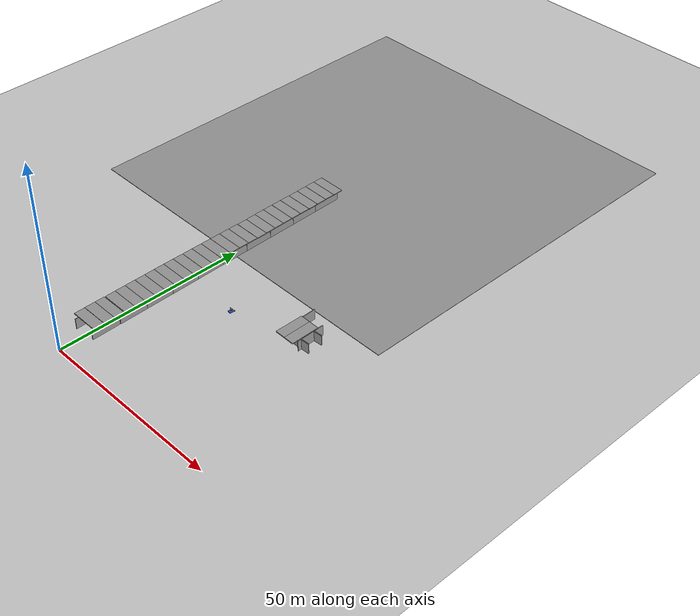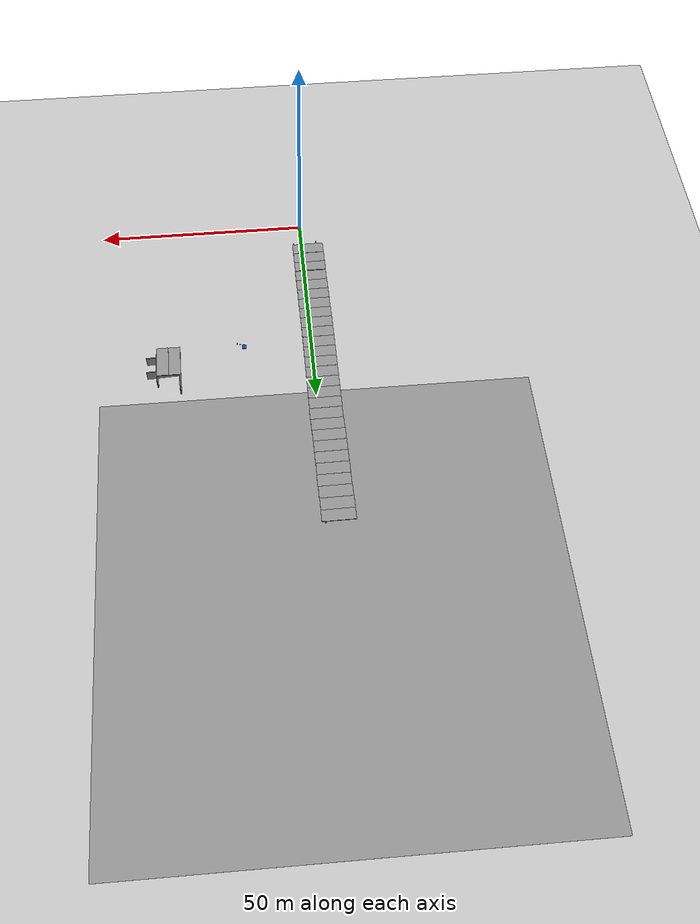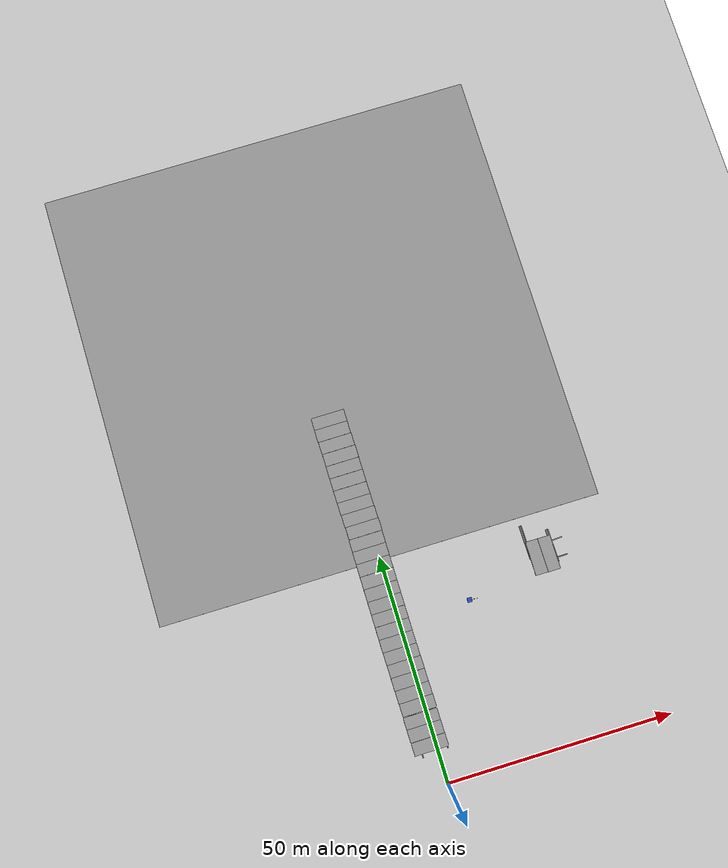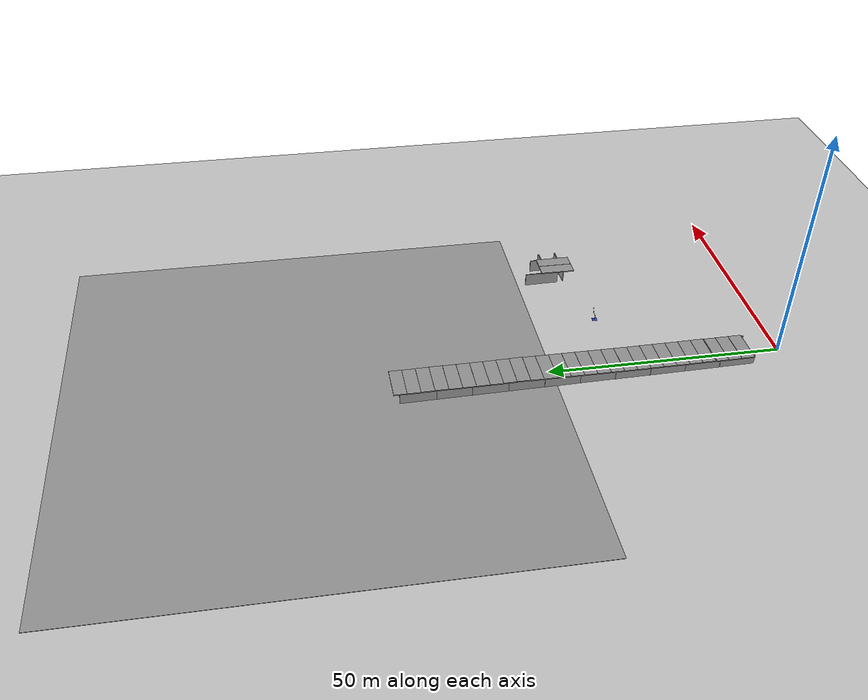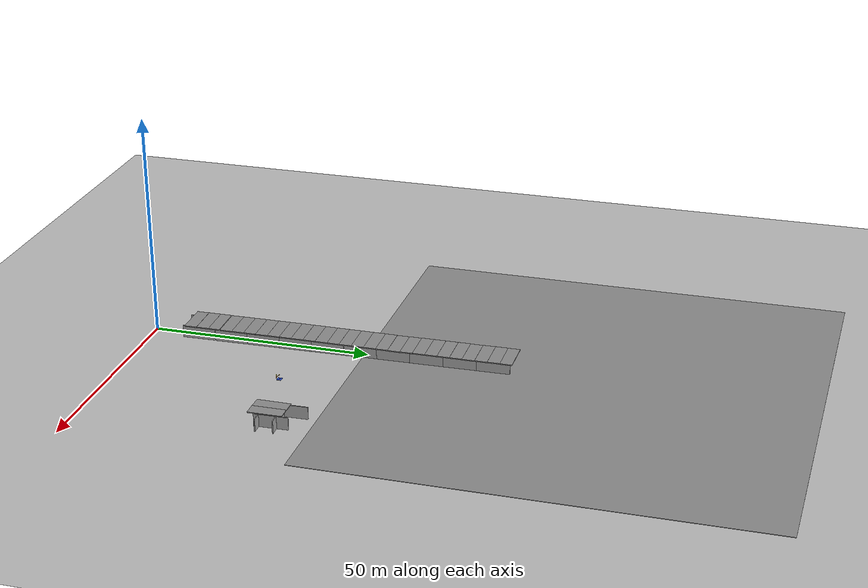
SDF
<sdf version="1.7">
 <world name="default">
  <model name="ground_plane">
   <static>1</static>
   <link name="link">
    <collision name="collision">
     <geometry><plane><normal>0 0 1</normal><size>100 100</size></plane></geometry>
     <surface><friction><ode><mu>100</mu><mu2>50</mu2></ode></friction></surface>
    </collision>
    <visual name="visual">
     <cast_shadows>0</cast_shadows>
     <geometry><plane><normal>0 0 1</normal><size>100 100</size></plane></geometry>
     <material>
      <script><uri>file://media/materials/scripts/gazebo.material</uri><name>Gazebo/Grey</name></script>
     </material>
    </visual>
   </link>
  </model>
  <model name="ground_plane_1">
   <static>1</static>
   <link name="link">
    <collision name="collision">
     <geometry><plane><normal>0 0 1</normal><size>100 100</size></plane></geometry>
     <surface><friction><ode><mu>100</mu><mu2>50</mu2></ode></friction></surface>
    </collision>
    <visual name="visual">
     <cast_shadows>0</cast_shadows>
     <geometry><plane><normal>0 0 1</normal><size>100 100</size></plane></geometry>
     <material>
      <script><uri>file://media/materials/scripts/gazebo.material</uri><name>Gazebo/Grey</name></script>
     </material>
    </visual>
   </link>
   <pose>0.099958 99.2729 0 0 -0 0</pose>
  </model>
  <model name="grey_wall">
   <static>1</static>
   <link name="link">
    <pose>0 0 1.4 0 -0 0</pose>
    <collision name="collision"><geometry><box><size>7.5 0.2 2.8</size></box></geometry></collision>
    <visual name="visual">
     <cast_shadows>0</cast_shadows>
     <geometry><box><size>7.5 0.2 2.8</size></box></geometry>
     <material>
      <script>
       <uri>model://grey_wall/materials/scripts</uri>
       <uri>model://grey_wall/materials/textures</uri>
       <name>vrc/grey_wall</name>
      </script>
     </material>
    </visual>
   </link>
   <pose>-3.89517 25.7087 0 0 -0 1.59137</pose>
  </model>
  <model name="grey_wall_clone">
   <static>1</static>
   <link name="link">
    <pose>0 0 1.4 0 -0 0</pose>
    <collision name="collision"><geometry><box><size>7.5 0.2 2.8</size></box></geometry></collision>
    <visual name="visual">
     <cast_shadows>0</cast_shadows>
     <geometry><box><size>7.5 0.2 2.8</size></box></geometry>
     <material>
      <script>
       <uri>model://grey_wall/materials/scripts</uri>
       <uri>model://grey_wall/materials/textures</uri>
       <name>vrc/grey_wall</name>
      </script>
     </material>
    </visual>
   </link>
   <pose>-3.75529 18.2122 0 0 -0 1.59137</pose>
  </model>
  <model name="grey_wall_clone_0">
   <static>1</static>
   <link name="link">
    <pose>0 0 1.4 0 -0 0</pose>
    <collision name="collision"><geometry><box><size>7.5 0.2 2.8</size></box></geometry></collision>
    <visual name="visual">
     <cast_shadows>0</cast_shadows>
     <geometry><box><size>7.5 0.2 2.8</size></box></geometry>
     <material>
      <script>
       <uri>model://grey_wall/materials/scripts</uri>
       <uri>model://grey_wall/materials/textures</uri>
       <name>vrc/grey_wall</name>
      </script>
     </material>
    </visual>
   </link>
   <pose>-3.568 10.6118 0 0 -0 1.59137</pose>
  </model>
  <model name="grey_wall_clone_2">
   <static>1</static>
   <link name="link">
    <pose>0 0 1.4 0 -0 0</pose>
    <collision name="collision"><geometry><box><size>7.5 0.2 2.8</size></box></geometry></collision>
    <visual name="visual">
     <cast_shadows>0</cast_shadows>
     <geometry><box><size>7.5 0.2 2.8</size></box></geometry>
     <material>
      <script>
       <uri>model://grey_wall/materials/scripts</uri>
       <uri>model://grey_wall/materials/textures</uri>
       <name>vrc/grey_wall</name>
      </script>
     </material>
    </visual>
   </link>
   <pose>-4.04207 33.233 0 0 -0 1.59137</pose>
  </model>
  <model name="grey_wall_clone_3">
   <static>1</static>
   <link name="link">
    <pose>0 0 1.4 0 -0 0</pose>
    <collision name="collision"><geometry><box><size>7.5 0.2 2.8</size></box></geometry></collision>
    <visual name="visual">
     <cast_shadows>0</cast_shadows>
     <geometry><box><size>7.5 0.2 2.8</size></box></geometry>
     <material>
      <script>
       <uri>model://grey_wall/materials/scripts</uri>
       <uri>model://grey_wall/materials/textures</uri>
       <name>vrc/grey_wall</name>
      </script>
     </material>
    </visual>
   </link>
   <pose>-4.14392 40.7338 0 0 -0 1.59137</pose>
  </model>
  <model name="grey_wall_clone_4">
   <static>1</static>
   <link name="link">
    <pose>0 0 1.4 0 -0 0</pose>
    <collision name="collision"><geometry><box><size>7.5 0.2 2.8</size></box></geometry></collision>
    <visual name="visual">
     <cast_shadows>0</cast_shadows>
     <geometry><box><size>7.5 0.2 2.8</size></box></geometry>
     <material>
      <script>
       <uri>model://grey_wall/materials/scripts</uri>
       <uri>model://grey_wall/materials/textures</uri>
       <name>vrc/grey_wall</name>
      </script>
     </material>
    </visual>
   </link>
   <pose>1.49292 41.2073 0.00396 0 -0 1.59137</pose>
  </model>
  <model name="grey_wall_clone_5">
   <static>1</static>
   <link name="link">
    <pose>0 0 1.4 0 -0 0</pose>
    <collision name="collision"><geometry><box><size>7.5 0.2 2.8</size></box></geometry></collision>
    <visual name="visual">
     <cast_shadows>0</cast_shadows>
     <geometry><box><size>7.5 0.2 2.8</size></box></geometry>
     <material>
      <script>
       <uri>model://grey_wall/materials/scripts</uri>
       <uri>model://grey_wall/materials/textures</uri>
       <name>vrc/grey_wall</name>
      </script>
     </material>
    </visual>
   </link>
   <pose>1.66348 33.6936 0 0 -0 1.59137</pose>
  </model>
  <model name="grey_wall_clone_6">
   <static>1</static>
   <link name="link">
    <pose>0 0 1.4 0 -0 0</pose>
    <collision name="collision"><geometry><box><size>7.5 0.2 2.8</size></box></geometry></collision>
    <visual name="visual">
     <cast_shadows>0</cast_shadows>
     <geometry><box><size>7.5 0.2 2.8</size></box></geometry>
     <material>
      <script>
       <uri>model://grey_wall/materials/scripts</uri>
       <uri>model://grey_wall/materials/textures</uri>
       <name>vrc/grey_wall</name>
      </script>
     </material>
    </visual>
   </link>
   <pose>1.78721 26.2071 0 0 -0 1.59137</pose>
  </model>
  <model name="grey_wall_clone_7">
   <static>1</static>
   <link name="link">
    <pose>0 0 1.4 0 -0 0</pose>
    <collision name="collision"><geometry><box><size>7.5 0.2 2.8</size></box></geometry></collision>
    <visual name="visual">
     <cast_shadows>0</cast_shadows>
     <geometry><box><size>7.5 0.2 2.8</size></box></geometry>
     <material>
      <script>
       <uri>model://grey_wall/materials/scripts</uri>
       <uri>model://grey_wall/materials/textures</uri>
       <name>vrc/grey_wall</name>
      </script>
     </material>
    </visual>
   </link>
   <pose>1.95483 18.6741 0 0 -0 1.59137</pose>
  </model>
  <model name="grey_wall_clone_8">
   <static>1</static>
   <link name="link">
    <pose>0 0 1.4 0 -0 0</pose>
    <collision name="collision"><geometry><box><size>7.5 0.2 2.8</size></box></geometry></collision>
    <visual name="visual">
     <cast_shadows>0</cast_shadows>
     <geometry><box><size>7.5 0.2 2.8</size></box></geometry>
     <material>
      <script>
       <uri>model://grey_wall/materials/scripts</uri>
       <uri>model://grey_wall/materials/textures</uri>
       <name>vrc/grey_wall</name>
      </script>
     </material>
    </visual>
   </link>
   <pose>2.04448 11.0446 0 0 -0 1.59137</pose>
  </model>
  <model name="grey_wall_clone_9">
   <static>1</static>
   <link name="link">
    <pose>0 0 1.4 0 -0 0</pose>
    <collision name="collision"><geometry><box><size>7.5 0.2 2.8</size></box></geometry></collision>
    <visual name="visual">
     <cast_shadows>0</cast_shadows>
     <geometry><box><size>7.5 0.2 2.8</size></box></geometry>
     <material>
      <script>
       <uri>model://grey_wall/materials/scripts</uri>
       <uri>model://grey_wall/materials/textures</uri>
       <name>vrc/grey_wall</name>
      </script>
     </material>
    </visual>
   </link>
   <pose>-4.3247 48.1948 0 0 -0 1.59137</pose>
  </model>
  <model name="grey_wall_clone_10">
   <static>1</static>
   <link name="link">
    <pose>0 0 1.4 0 -0 0</pose>
    <collision name="collision"><geometry><box><size>7.5 0.2 2.8</size></box></geometry></collision>
    <visual name="visual">
     <cast_shadows>0</cast_shadows>
     <geometry><box><size>7.5 0.2 2.8</size></box></geometry>
     <material>
      <script>
       <uri>model://grey_wall/materials/scripts</uri>
       <uri>model://grey_wall/materials/textures</uri>
       <name>vrc/grey_wall</name>
      </script>
     </material>
    </visual>
   </link>
   <pose>1.34127 48.72 0 0 -0 1.59137</pose>
  </model>
  <model name="grey_wall_clone_1">
   <static>1</static>
   <link name="link">
    <pose>0 0 1.4 0 -0 0</pose>
    <collision name="collision"><geometry><box><size>7.5 0.2 2.8</size></box></geometry></collision>
    <visual name="visual">
     <cast_shadows>0</cast_shadows>
     <geometry><box><size>7.5 0.2 2.8</size></box></geometry>
     <material>
      <script>
       <uri>model://grey_wall/materials/scripts</uri>
       <uri>model://grey_wall/materials/textures</uri>
       <name>vrc/grey_wall</name>
      </script>
     </material>
    </visual>
   </link>
   <pose>-1.62331 49.7018 2.86115 1.57041 -0.013654 -3.13613</pose>
  </model>
  <model name="grey_wall_clone_1_clone">
   <static>1</static>
   <link name="link">
    <pose>0 0 1.4 0 -0 0</pose>
    <collision name="collision"><geometry><box><size>7.5 0.2 2.8</size></box></geometry></collision>
    <visual name="visual">
     <cast_shadows>0</cast_shadows>
     <geometry><box><size>7.5 0.2 2.8</size></box></geometry>
     <material>
      <script>
       <uri>model://grey_wall/materials/scripts</uri>
       <uri>model://grey_wall/materials/textures</uri>
       <name>vrc/grey_wall</name>
      </script>
     </material>
    </visual>
   </link>
   <pose>-1.62327 46.905 2.86115 1.57041 -0.013654 -3.13613</pose>
  </model>
  <model name="grey_wall_clone_1_clone_0">
   <static>1</static>
   <link name="link">
    <pose>0 0 1.4 0 -0 0</pose>
    <collision name="collision"><geometry><box><size>7.5 0.2 2.8</size></box></geometry></collision>
    <visual name="visual">
     <cast_shadows>0</cast_shadows>
     <geometry><box><size>7.5 0.2 2.8</size></box></geometry>
     <material>
      <script>
       <uri>model://grey_wall/materials/scripts</uri>
       <uri>model://grey_wall/materials/textures</uri>
       <name>vrc/grey_wall</name>
      </script>
     </material>
    </visual>
   </link>
   <pose>-1.61773 44.0989 2.86115 1.57041 -0.013654 -3.13613</pose>
  </model>
  <model name="grey_wall_clone_1_clone_1">
   <static>1</static>
   <link name="link">
    <pose>0 0 1.4 0 -0 0</pose>
    <collision name="collision"><geometry><box><size>7.5 0.2 2.8</size></box></geometry></collision>
    <visual name="visual">
     <cast_shadows>0</cast_shadows>
     <geometry><box><size>7.5 0.2 2.8</size></box></geometry>
     <material>
      <script>
       <uri>model://grey_wall/materials/scripts</uri>
       <uri>model://grey_wall/materials/textures</uri>
       <name>vrc/grey_wall</name>
      </script>
     </material>
    </visual>
   </link>
   <pose>-1.61264 41.2893 2.86115 1.57041 -0.013654 -3.13613</pose>
  </model>
  <model name="grey_wall_clone_1_clone_2">
   <static>1</static>
   <link name="link">
    <pose>0 0 1.4 0 -0 0</pose>
    <collision name="collision"><geometry><box><size>7.5 0.2 2.8</size></box></geometry></collision>
    <visual name="visual">
     <cast_shadows>0</cast_shadows>
     <geometry><box><size>7.5 0.2 2.8</size></box></geometry>
     <material>
      <script>
       <uri>model://grey_wall/materials/scripts</uri>
       <uri>model://grey_wall/materials/textures</uri>
       <name>vrc/grey_wall</name>
      </script>
     </material>
    </visual>
   </link>
   <pose>-1.61138 38.525 2.86115 1.57041 -0.013654 -3.13613</pose>
  </model>
  <model name="grey_wall_clone_1_clone_3">
   <static>1</static>
   <link name="link">
    <pose>0 0 1.4 0 -0 0</pose>
    <collision name="collision"><geometry><box><size>7.5 0.2 2.8</size></box></geometry></collision>
    <visual name="visual">
     <cast_shadows>0</cast_shadows>
     <geometry><box><size>7.5 0.2 2.8</size></box></geometry>
     <material>
      <script>
       <uri>model://grey_wall/materials/scripts</uri>
       <uri>model://grey_wall/materials/textures</uri>
       <name>vrc/grey_wall</name>
      </script>
     </material>
    </visual>
   </link>
   <pose>-1.60564 35.7185 2.86115 1.57041 -0.013654 -3.13613</pose>
  </model>
  <model name="grey_wall_clone_1_clone_4">
   <static>1</static>
   <link name="link">
    <pose>0 0 1.4 0 -0 0</pose>
    <collision name="collision"><geometry><box><size>7.5 0.2 2.8</size></box></geometry></collision>
    <visual name="visual">
     <cast_shadows>0</cast_shadows>
     <geometry><box><size>7.5 0.2 2.8</size></box></geometry>
     <material>
      <script>
       <uri>model://grey_wall/materials/scripts</uri>
       <uri>model://grey_wall/materials/textures</uri>
       <name>vrc/grey_wall</name>
      </script>
     </material>
    </visual>
   </link>
   <pose>-1.60116 32.9123 2.86115 1.57041 -0.013654 -3.13613</pose>
  </model>
  <model name="grey_wall_clone_1_clone_5">
   <static>1</static>
   <link name="link">
    <pose>0 0 1.4 0 -0 0</pose>
    <collision name="collision"><geometry><box><size>7.5 0.2 2.8</size></box></geometry></collision>
    <visual name="visual">
     <cast_shadows>0</cast_shadows>
     <geometry><box><size>7.5 0.2 2.8</size></box></geometry>
     <material>
      <script>
       <uri>model://grey_wall/materials/scripts</uri>
       <uri>model://grey_wall/materials/textures</uri>
       <name>vrc/grey_wall</name>
      </script>
     </material>
    </visual>
   </link>
   <pose>-1.59902 30.1513 2.86115 1.57041 -0.013654 -3.13613</pose>
  </model>
  <model name="grey_wall_clone_1_clone_6">
   <static>1</static>
   <link name="link">
    <pose>0 0 1.4 0 -0 0</pose>
    <collision name="collision"><geometry><box><size>7.5 0.2 2.8</size></box></geometry></collision>
    <visual name="visual">
     <cast_shadows>0</cast_shadows>
     <geometry><box><size>7.5 0.2 2.8</size></box></geometry>
     <material>
      <script>
       <uri>model://grey_wall/materials/scripts</uri>
       <uri>model://grey_wall/materials/textures</uri>
       <name>vrc/grey_wall</name>
      </script>
     </material>
    </visual>
   </link>
   <pose>-1.54915 27.3506 2.86115 1.57041 -0.013654 -3.13613</pose>
  </model>
  <model name="grey_wall_clone_1_clone_7">
   <static>1</static>
   <link name="link">
    <pose>0 0 1.4 0 -0 0</pose>
    <collision name="collision"><geometry><box><size>7.5 0.2 2.8</size></box></geometry></collision>
    <visual name="visual">
     <cast_shadows>0</cast_shadows>
     <geometry><box><size>7.5 0.2 2.8</size></box></geometry>
     <material>
      <script>
       <uri>model://grey_wall/materials/scripts</uri>
       <uri>model://grey_wall/materials/textures</uri>
       <name>vrc/grey_wall</name>
      </script>
     </material>
    </visual>
   </link>
   <pose>-1.50276 24.5932 2.86115 1.57041 -0.013654 -3.13613</pose>
  </model>
  <model name="grey_wall_clone_1_clone_8">
   <static>1</static>
   <link name="link">
    <pose>0 0 1.4 0 -0 0</pose>
    <collision name="collision"><geometry><box><size>7.5 0.2 2.8</size></box></geometry></collision>
    <visual name="visual">
     <cast_shadows>0</cast_shadows>
     <geometry><box><size>7.5 0.2 2.8</size></box></geometry>
     <material>
      <script>
       <uri>model://grey_wall/materials/scripts</uri>
       <uri>model://grey_wall/materials/textures</uri>
       <name>vrc/grey_wall</name>
      </script>
     </material>
    </visual>
   </link>
   <pose>-1.49738 21.7908 2.86115 1.57041 -0.013654 -3.13613</pose>
  </model>
  <model name="grey_wall_clone_1_clone_9">
   <static>1</static>
   <link name="link">
    <pose>0 0 1.4 0 -0 0</pose>
    <collision name="collision"><geometry><box><size>7.5 0.2 2.8</size></box></geometry></collision>
    <visual name="visual">
     <cast_shadows>0</cast_shadows>
     <geometry><box><size>7.5 0.2 2.8</size></box></geometry>
     <material>
      <script>
       <uri>model://grey_wall/materials/scripts</uri>
       <uri>model://grey_wall/materials/textures</uri>
       <name>vrc/grey_wall</name>
      </script>
     </material>
    </visual>
   </link>
   <pose>-1.44771 18.9914 2.86115 1.57041 -0.013654 -3.13613</pose>
  </model>
  <model name="grey_wall_clone_1_clone_10">
   <static>1</static>
   <link name="link">
    <pose>0 0 1.4 0 -0 0</pose>
    <collision name="collision"><geometry><box><size>7.5 0.2 2.8</size></box></geometry></collision>
    <visual name="visual">
     <cast_shadows>0</cast_shadows>
     <geometry><box><size>7.5 0.2 2.8</size></box></geometry>
     <material>
      <script>
       <uri>model://grey_wall/materials/scripts</uri>
       <uri>model://grey_wall/materials/textures</uri>
       <name>vrc/grey_wall</name>
      </script>
     </material>
    </visual>
   </link>
   <pose>-1.39742 16.193 2.86115 1.57041 -0.013654 -3.13613</pose>
  </model>
  <model name="grey_wall_clone_1_clone_11">
   <static>1</static>
   <link name="link">
    <pose>0 0 1.4 0 -0 0</pose>
    <collision name="collision"><geometry><box><size>7.5 0.2 2.8</size></box></geometry></collision>
    <visual name="visual">
     <cast_shadows>0</cast_shadows>
     <geometry><box><size>7.5 0.2 2.8</size></box></geometry>
     <material>
      <script>
       <uri>model://grey_wall/materials/scripts</uri>
       <uri>model://grey_wall/materials/textures</uri>
       <name>vrc/grey_wall</name>
      </script>
     </material>
    </visual>
   </link>
   <pose>-1.43252 13.2189 2.86115 1.57041 -0.013654 -3.13613</pose>
  </model>
  <model name="grey_wall_clone_1_clone_12">
   <static>1</static>
   <link name="link">
    <pose>0 0 1.4 0 -0 0</pose>
    <collision name="collision"><geometry><box><size>7.5 0.2 2.8</size></box></geometry></collision>
    <visual name="visual">
     <cast_shadows>0</cast_shadows>
     <geometry><box><size>7.5 0.2 2.8</size></box></geometry>
     <material>
      <script>
       <uri>model://grey_wall/materials/scripts</uri>
       <uri>model://grey_wall/materials/textures</uri>
       <name>vrc/grey_wall</name>
      </script>
     </material>
    </visual>
   </link>
   <pose>-1.40757 10.6247 2.86115 1.57041 -0.013654 -3.13613</pose>
  </model>
  <model name="grey_wall_clone_1_clone_13">
   <static>1</static>
   <link name="link">
    <pose>0 0 1.4 0 -0 0</pose>
    <collision name="collision"><geometry><box><size>7.5 0.2 2.8</size></box></geometry></collision>
    <visual name="visual">
     <cast_shadows>0</cast_shadows>
     <geometry><box><size>7.5 0.2 2.8</size></box></geometry>
     <material>
      <script>
       <uri>model://grey_wall/materials/scripts</uri>
       <uri>model://grey_wall/materials/textures</uri>
       <name>vrc/grey_wall</name>
      </script>
     </material>
    </visual>
   </link>
   <pose>-1.35278 7.78526 2.86115 1.57041 -0.013654 -3.13613</pose>
  </model>
  <model name="grey_wall_clone_9_clone">
   <static>1</static>
   <link name="link">
    <pose>0 0 1.4 0 -0 0</pose>
    <collision name="collision"><geometry><box><size>7.5 0.2 2.8</size></box></geometry></collision>
    <visual name="visual">
     <cast_shadows>0</cast_shadows>
     <geometry><box><size>7.5 0.2 2.8</size></box></geometry>
     <material>
      <script>
       <uri>model://grey_wall/materials/scripts</uri>
       <uri>model://grey_wall/materials/textures</uri>
       <name>vrc/grey_wall</name>
      </script>
     </material>
    </visual>
   </link>
   <pose>-4.44529 55.7221 0 0 -0 1.59137</pose>
  </model>
  <model name="grey_wall_clone_9_clone_clone">
   <static>1</static>
   <link name="link">
    <pose>0 0 1.4 0 -0 0</pose>
    <collision name="collision"><geometry><box><size>7.5 0.2 2.8</size></box></geometry></collision>
    <visual name="visual">
     <cast_shadows>0</cast_shadows>
     <geometry><box><size>7.5 0.2 2.8</size></box></geometry>
     <material>
      <script>
       <uri>model://grey_wall/materials/scripts</uri>
       <uri>model://grey_wall/materials/textures</uri>
       <name>vrc/grey_wall</name>
      </script>
     </material>
    </visual>
   </link>
   <pose>-4.59593 63.2204 0 0 -0 1.59137</pose>
  </model>
  <model name="grey_wall_clone_9_clone_clone_0">
   <static>1</static>
   <link name="link">
    <pose>0 0 1.4 0 -0 0</pose>
    <collision name="collision"><geometry><box><size>7.5 0.2 2.8</size></box></geometry></collision>
    <visual name="visual">
     <cast_shadows>0</cast_shadows>
     <geometry><box><size>7.5 0.2 2.8</size></box></geometry>
     <material>
      <script>
       <uri>model://grey_wall/materials/scripts</uri>
       <uri>model://grey_wall/materials/textures</uri>
       <name>vrc/grey_wall</name>
      </script>
     </material>
    </visual>
   </link>
   <pose>-4.73317 70.6375 0 0 -0 1.59137</pose>
  </model>
  <model name="grey_wall_clone_9_clone_clone_1">
   <static>1</static>
   <link name="link">
    <pose>0 0 1.4 0 -0 0</pose>
    <collision name="collision"><geometry><box><size>7.5 0.2 2.8</size></box></geometry></collision>
    <visual name="visual">
     <cast_shadows>0</cast_shadows>
     <geometry><box><size>7.5 0.2 2.8</size></box></geometry>
     <material>
      <script>
       <uri>model://grey_wall/materials/scripts</uri>
       <uri>model://grey_wall/materials/textures</uri>
       <name>vrc/grey_wall</name>
      </script>
     </material>
    </visual>
   </link>
   <pose>-4.88662 78.082 0 0 -0 1.59137</pose>
  </model>
  <model name="grey_wall_clone_9_clone_clone_2">
   <static>1</static>
   <link name="link">
    <pose>0 0 1.4 0 -0 0</pose>
    <collision name="collision"><geometry><box><size>7.5 0.2 2.8</size></box></geometry></collision>
    <visual name="visual">
     <cast_shadows>0</cast_shadows>
     <geometry><box><size>7.5 0.2 2.8</size></box></geometry>
     <material>
      <script>
       <uri>model://grey_wall/materials/scripts</uri>
       <uri>model://grey_wall/materials/textures</uri>
       <name>vrc/grey_wall</name>
      </script>
     </material>
    </visual>
   </link>
   <pose>1.22426 56.209 0 0 -0 1.59137</pose>
  </model>
  <model name="grey_wall_clone_9_clone_clone_3">
   <static>1</static>
   <link name="link">
    <pose>0 0 1.4 0 -0 0</pose>
    <collision name="collision"><geometry><box><size>7.5 0.2 2.8</size></box></geometry></collision>
    <visual name="visual">
     <cast_shadows>0</cast_shadows>
     <geometry><box><size>7.5 0.2 2.8</size></box></geometry>
     <material>
      <script>
       <uri>model://grey_wall/materials/scripts</uri>
       <uri>model://grey_wall/materials/textures</uri>
       <name>vrc/grey_wall</name>
      </script>
     </material>
    </visual>
   </link>
   <pose>1.11942 63.7229 0 0 -0 1.59137</pose>
  </model>
  <model name="grey_wall_clone_9_clone_clone_4">
   <static>1</static>
   <link name="link">
    <pose>0 0 1.4 0 -0 0</pose>
    <collision name="collision"><geometry><box><size>7.5 0.2 2.8</size></box></geometry></collision>
    <visual name="visual">
     <cast_shadows>0</cast_shadows>
     <geometry><box><size>7.5 0.2 2.8</size></box></geometry>
     <material>
      <script>
       <uri>model://grey_wall/materials/scripts</uri>
       <uri>model://grey_wall/materials/textures</uri>
       <name>vrc/grey_wall</name>
      </script>
     </material>
    </visual>
   </link>
   <pose>0.978804 71.2196 0 0 -0 1.59137</pose>
  </model>
  <model name="grey_wall_clone_9_clone_clone_5">
   <static>1</static>
   <link name="link">
    <pose>0 0 1.4 0 -0 0</pose>
    <collision name="collision"><geometry><box><size>7.5 0.2 2.8</size></box></geometry></collision>
    <visual name="visual">
     <cast_shadows>0</cast_shadows>
     <geometry><box><size>7.5 0.2 2.8</size></box></geometry>
     <material>
      <script>
       <uri>model://grey_wall/materials/scripts</uri>
       <uri>model://grey_wall/materials/textures</uri>
       <name>vrc/grey_wall</name>
      </script>
     </material>
    </visual>
   </link>
   <pose>0.844167 78.6971 0 0 -0 1.59137</pose>
  </model>
  <model name="grey_wall_clone_1_clone_14">
   <static>1</static>
   <link name="link">
    <pose>0 0 1.4 0 -0 0</pose>
    <collision name="collision"><geometry><box><size>7.5 0.2 2.8</size></box></geometry></collision>
    <visual name="visual">
     <cast_shadows>0</cast_shadows>
     <geometry><box><size>7.5 0.2 2.8</size></box></geometry>
     <material>
      <script>
       <uri>model://grey_wall/materials/scripts</uri>
       <uri>model://grey_wall/materials/textures</uri>
       <name>vrc/grey_wall</name>
      </script>
     </material>
    </visual>
   </link>
   <pose>-1.61513 52.435 2.86115 1.57041 -0.013654 -3.13613</pose>
  </model>
  <model name="grey_wall_clone_1_clone_15">
   <static>1</static>
   <link name="link">
    <pose>0 0 1.4 0 -0 0</pose>
    <collision name="collision"><geometry><box><size>7.5 0.2 2.8</size></box></geometry></collision>
    <visual name="visual">
     <cast_shadows>0</cast_shadows>
     <geometry><box><size>7.5 0.2 2.8</size></box></geometry>
     <material>
      <script>
       <uri>model://grey_wall/materials/scripts</uri>
       <uri>model://grey_wall/materials/textures</uri>
       <name>vrc/grey_wall</name>
      </script>
     </material>
    </visual>
   </link>
   <pose>-1.55498 55.2526 2.86115 1.57041 -0.013654 -3.13613</pose>
  </model>
  <model name="grey_wall_clone_1_clone_16">
   <static>1</static>
   <link name="link">
    <pose>0 0 1.4 0 -0 0</pose>
    <collision name="collision"><geometry><box><size>7.5 0.2 2.8</size></box></geometry></collision>
    <visual name="visual">
     <cast_shadows>0</cast_shadows>
     <geometry><box><size>7.5 0.2 2.8</size></box></geometry>
     <material>
      <script>
       <uri>model://grey_wall/materials/scripts</uri>
       <uri>model://grey_wall/materials/textures</uri>
       <name>vrc/grey_wall</name>
      </script>
     </material>
    </visual>
   </link>
   <pose>-1.64399 58.0484 2.86115 1.57041 -0.013654 -3.13613</pose>
  </model>
  <model name="grey_wall_clone_1_clone_17">
   <static>1</static>
   <link name="link">
    <pose>0 0 1.4 0 -0 0</pose>
    <collision name="collision"><geometry><box><size>7.5 0.2 2.8</size></box></geometry></collision>
    <visual name="visual">
     <cast_shadows>0</cast_shadows>
     <geometry><box><size>7.5 0.2 2.8</size></box></geometry>
     <material>
      <script>
       <uri>model://grey_wall/materials/scripts</uri>
       <uri>model://grey_wall/materials/textures</uri>
       <name>vrc/grey_wall</name>
      </script>
     </material>
    </visual>
   </link>
   <pose>-1.72464 60.8172 2.86115 1.57041 -0.013654 -3.13613</pose>
  </model>
  <model name="grey_wall_clone_1_clone_18">
   <static>1</static>
   <link name="link">
    <pose>0 0 1.4 0 -0 0</pose>
    <collision name="collision"><geometry><box><size>7.5 0.2 2.8</size></box></geometry></collision>
    <visual name="visual">
     <cast_shadows>0</cast_shadows>
     <geometry><box><size>7.5 0.2 2.8</size></box></geometry>
     <material>
      <script>
       <uri>model://grey_wall/materials/scripts</uri>
       <uri>model://grey_wall/materials/textures</uri>
       <name>vrc/grey_wall</name>
      </script>
     </material>
    </visual>
   </link>
   <pose>-1.75579 63.5811 2.86115 1.57041 -0.013654 -3.13613</pose>
  </model>
  <model name="grey_wall_clone_1_clone_19">
   <static>1</static>
   <link name="link">
    <pose>0 0 1.4 0 -0 0</pose>
    <collision name="collision"><geometry><box><size>7.5 0.2 2.8</size></box></geometry></collision>
    <visual name="visual">
     <cast_shadows>0</cast_shadows>
     <geometry><box><size>7.5 0.2 2.8</size></box></geometry>
     <material>
      <script>
       <uri>model://grey_wall/materials/scripts</uri>
       <uri>model://grey_wall/materials/textures</uri>
       <name>vrc/grey_wall</name>
      </script>
     </material>
    </visual>
   </link>
   <pose>-1.77945 66.3932 2.86115 1.57041 -0.013654 -3.13613</pose>
  </model>
  <model name="grey_wall_clone_1_clone_20">
   <static>1</static>
   <link name="link">
    <pose>0 0 1.4 0 -0 0</pose>
    <collision name="collision"><geometry><box><size>7.5 0.2 2.8</size></box></geometry></collision>
    <visual name="visual">
     <cast_shadows>0</cast_shadows>
     <geometry><box><size>7.5 0.2 2.8</size></box></geometry>
     <material>
      <script>
       <uri>model://grey_wall/materials/scripts</uri>
       <uri>model://grey_wall/materials/textures</uri>
       <name>vrc/grey_wall</name>
      </script>
     </material>
    </visual>
   </link>
   <pose>-1.80324 69.203 2.86115 1.57041 -0.013654 -3.13613</pose>
  </model>
  <model name="grey_wall_clone_1_clone_21">
   <static>1</static>
   <link name="link">
    <pose>0 0 1.4 0 -0 0</pose>
    <collision name="collision"><geometry><box><size>7.5 0.2 2.8</size></box></geometry></collision>
    <visual name="visual">
     <cast_shadows>0</cast_shadows>
     <geometry><box><size>7.5 0.2 2.8</size></box></geometry>
     <material>
      <script>
       <uri>model://grey_wall/materials/scripts</uri>
       <uri>model://grey_wall/materials/textures</uri>
       <name>vrc/grey_wall</name>
      </script>
     </material>
    </visual>
   </link>
   <pose>-1.77665 72.0123 2.86115 1.57041 -0.013654 -3.13613</pose>
  </model>
  <model name="grey_wall_clone_1_clone_22">
   <static>1</static>
   <link name="link">
    <pose>0 0 1.4 0 -0 0</pose>
    <collision name="collision"><geometry><box><size>7.5 0.2 2.8</size></box></geometry></collision>
    <visual name="visual">
     <cast_shadows>0</cast_shadows>
     <geometry><box><size>7.5 0.2 2.8</size></box></geometry>
     <material>
      <script>
       <uri>model://grey_wall/materials/scripts</uri>
       <uri>model://grey_wall/materials/textures</uri>
       <name>vrc/grey_wall</name>
      </script>
     </material>
    </visual>
   </link>
   <pose>-1.851 74.8205 2.86115 1.57041 -0.013654 -3.13613</pose>
  </model>
  <model name="grey_wall_clone_1_clone_23">
   <static>1</static>
   <link name="link">
    <pose>0 0 1.4 0 -0 0</pose>
    <collision name="collision"><geometry><box><size>7.5 0.2 2.8</size></box></geometry></collision>
    <visual name="visual">
     <cast_shadows>0</cast_shadows>
     <geometry><box><size>7.5 0.2 2.8</size></box></geometry>
     <material>
      <script>
       <uri>model://grey_wall/materials/scripts</uri>
       <uri>model://grey_wall/materials/textures</uri>
       <name>vrc/grey_wall</name>
      </script>
     </material>
    </visual>
   </link>
   <pose>-1.925 77.6301 2.86115 1.57041 -0.013654 -3.13613</pose>
  </model>
  <model name="grey_wall_clone_1_clone_24">
   <static>1</static>
   <link name="link">
    <pose>0 0 1.4 0 -0 0</pose>
    <collision name="collision"><geometry><box><size>7.5 0.2 2.8</size></box></geometry></collision>
    <visual name="visual">
     <cast_shadows>0</cast_shadows>
     <geometry><box><size>7.5 0.2 2.8</size></box></geometry>
     <material>
      <script>
       <uri>model://grey_wall/materials/scripts</uri>
       <uri>model://grey_wall/materials/textures</uri>
       <name>vrc/grey_wall</name>
      </script>
     </material>
    </visual>
   </link>
   <pose>-1.91233 80.3321 2.86115 1.57041 -0.013654 -3.13613</pose>
  </model>
  <model name="grey_wall_clone_8_clone_17_clone">
   <static>1</static>
   <link name="link">
    <pose>0 0 1.4 0 -0 0</pose>
    <collision name="collision"><geometry><box><size>7.5 0.2 2.8</size></box></geometry></collision>
    <visual name="visual">
     <cast_shadows>0</cast_shadows>
     <geometry><box><size>7.5 0.2 2.8</size></box></geometry>
     <material>
      <script>
       <uri>model://grey_wall/materials/scripts</uri>
       <uri>model://grey_wall/materials/textures</uri>
       <name>vrc/grey_wall</name>
      </script>
     </material>
    </visual>
   </link>
   <pose>36.6161 41.3402 0 0 -0 1.59137</pose>
  </model>
  <model name="grey_wall_clone_8_clone_17_clone_0">
   <static>1</static>
   <link name="link">
    <pose>0 0 1.4 0 -0 0</pose>
    <collision name="collision"><geometry><box><size>7.5 0.2 2.8</size></box></geometry></collision>
    <visual name="visual">
     <cast_shadows>0</cast_shadows>
     <geometry><box><size>7.5 0.2 2.8</size></box></geometry>
     <material>
      <script>
       <uri>model://grey_wall/materials/scripts</uri>
       <uri>model://grey_wall/materials/textures</uri>
       <name>vrc/grey_wall</name>
      </script>
     </material>
    </visual>
   </link>
   <pose>35.2199 42.3798 0 0 -0 -3.08882</pose>
  </model>
  <model name="grey_wall_clone_8_clone_17_clone_1">
   <static>1</static>
   <link name="link">
    <pose>0 0 1.4 0 -0 0</pose>
    <collision name="collision"><geometry><box><size>7.5 0.2 2.8</size></box></geometry></collision>
    <visual name="visual">
     <cast_shadows>0</cast_shadows>
     <geometry><box><size>7.5 0.2 2.8</size></box></geometry>
     <material>
      <script>
       <uri>model://grey_wall/materials/scripts</uri>
       <uri>model://grey_wall/materials/textures</uri>
       <name>vrc/grey_wall</name>
      </script>
     </material>
    </visual>
   </link>
   <pose>35.2685 38.5994 0 0 -0 0.028883</pose>
  </model>
  <model name="grey_wall_clone_1_clone_7_clone">
   <static>1</static>
   <link name="link">
    <pose>0 0 1.4 0 -0 0</pose>
    <collision name="collision"><geometry><box><size>7.5 0.2 2.8</size></box></geometry></collision>
    <visual name="visual">
     <cast_shadows>0</cast_shadows>
     <geometry><box><size>7.5 0.2 2.8</size></box></geometry>
     <material>
      <script>
       <uri>model://grey_wall/materials/scripts</uri>
       <uri>model://grey_wall/materials/textures</uri>
       <name>vrc/grey_wall</name>
      </script>
     </material>
    </visual>
   </link>
   <pose>36.5951 39.9614 2.86115 1.55714 0.00036 -1.56724</pose>
  </model>
  <model name="grey_wall_clone_1_clone_7_clone_0">
   <static>1</static>
   <link name="link">
    <pose>0 0 1.4 0 -0 0</pose>
    <collision name="collision"><geometry><box><size>7.5 0.2 2.8</size></box></geometry></collision>
    <visual name="visual">
     <cast_shadows>0</cast_shadows>
     <geometry><box><size>7.5 0.2 2.8</size></box></geometry>
     <material>
      <script>
       <uri>model://grey_wall/materials/scripts</uri>
       <uri>model://grey_wall/materials/textures</uri>
       <name>vrc/grey_wall</name>
      </script>
     </material>
    </visual>
   </link>
   <pose>33.8261 39.9739 2.86768 1.55714 0.000212 -1.57814</pose>
  </model>
  <model name="grey_wall_clone_8_clone_17_clone_clone">
   <static>1</static>
   <link name="link">
    <pose>0 0 1.4 0 -0 0</pose>
    <collision name="collision"><geometry><box><size>7.5 0.2 2.8</size></box></geometry></collision>
    <visual name="visual">
     <cast_shadows>0</cast_shadows>
     <geometry><box><size>7.5 0.2 2.8</size></box></geometry>
     <material>
      <script>
       <uri>model://grey_wall/materials/scripts</uri>
       <uri>model://grey_wall/materials/textures</uri>
       <name>vrc/grey_wall</name>
      </script>
     </material>
    </visual>
   </link>
   <pose>31.2971 43.685 0 0 -0 1.59137</pose>
  </model>
  <model name="simple_arm">
   <link name="arm_base">
    <inertial>
     <pose>0 0 0.00099 0 -0 0</pose>
     <inertia><ixx>1.11</ixx><ixy>0</ixy><ixz>0</ixz><iyy>100.11</iyy><iyz>0</iyz><izz>1.01</izz></inertia>
     <mass>101</mass>
    </inertial>
    <collision name="arm_base_geom">
     <pose>0 0 0.05 0 -0 0</pose>
     <geometry><box><size>1 1 0.1</size></box></geometry>
    </collision>
    <visual name="arm_base_geom_visual">
     <pose>0 0 0.05 0 -0 0</pose>
     <geometry><box><size>1 1 0.1</size></box></geometry>
     <material>
      <script><uri>file://media/materials/scripts/gazebo.material</uri><name>Gazebo/Blue</name></script>
     </material>
    </visual>
    <collision name="arm_base_geom_arm_trunk">
     <pose>0 0 0.6 0 -0 0</pose>
     <geometry><cylinder><radius>0.05</radius><length>1</length></cylinder></geometry>
    </collision>
    <visual name="arm_base_geom_arm_trunk_visual">
     <pose>0 0 0.6 0 -0 0</pose>
     <geometry><cylinder><radius>0.05</radius><length>1</length></cylinder></geometry>
     <material>
      <script><uri>file://media/materials/scripts/gazebo.material</uri><name>Gazebo/Red</name></script>
     </material>
    </visual>
   </link>
   <link name="arm_shoulder_pan">
    <pose>0 0 1.1 0 -0 0</pose>
    <inertial>
     <pose>0.045455 0 0 0 -0 0</pose>
     <inertia><ixx>0.011</ixx><ixy>0</ixy><ixz>0</ixz><iyy>0.0225</iyy><iyz>0</iyz><izz>0.0135</izz></inertia>
     <mass>1.1</mass>
    </inertial>
    <collision name="arm_shoulder_pan_geom">
     <pose>0 0 0.05 0 -0 0</pose>
     <geometry><cylinder><radius>0.05</radius><length>0.1</length></cylinder></geometry>
    </collision>
    <visual name="arm_shoulder_pan_geom_visual">
     <pose>0 0 0.05 0 -0 0</pose>
     <geometry><cylinder><radius>0.05</radius><length>0.1</length></cylinder></geometry>
     <material>
      <script><uri>file://media/materials/scripts/gazebo.material</uri><name>Gazebo/Yellow</name></script>
     </material>
    </visual>
    <collision name="arm_shoulder_pan_geom_arm_shoulder">
     <pose>0.55 0 0.05 0 -0 0</pose>
     <geometry><box><size>1 0.05 0.1</size></box></geometry>
    </collision>
    <visual name="arm_shoulder_pan_geom_arm_shoulder_visual">
     <pose>0.55 0 0.05 0 -0 0</pose>
     <geometry><box><size>1 0.05 0.1</size></box></geometry>
     <material>
      <script><uri>file://media/materials/scripts/gazebo.material</uri><name>Gazebo/Yellow</name></script>
     </material>
    </visual>
   </link>
   <link name="arm_elbow_pan">
    <pose>1.05 0 1.1 0 -0 0</pose>
    <inertial>
     <pose>0.0875 0 0.083333 0 -0 0</pose>
     <inertia>
      <ixx>0.031</ixx>
      <ixy>0</ixy>
      <ixz>0.005</ixz>
      <iyy>0.07275</iyy>
      <iyz>0</iyz>
      <izz>0.04475</izz>
     </inertia>
     <mass>1.2</mass>
    </inertial>
    <collision name="arm_elbow_pan_geom">
     <pose>0 0 0.1 0 -0 0</pose>
     <geometry><cylinder><radius>0.05</radius><length>0.2</length></cylinder></geometry>
    </collision>
    <visual name="arm_elbow_pan_geom_visual">
     <pose>0 0 0.1 0 -0 0</pose>
     <geometry><cylinder><radius>0.05</radius><length>0.2</length></cylinder></geometry>
     <material>
      <script><uri>file://media/materials/scripts/gazebo.material</uri><name>Gazebo/Red</name></script>
     </material>
    </visual>
    <collision name="arm_elbow_pan_geom_arm_elbow">
     <pose>0.3 0 0.15 0 -0 0</pose>
     <geometry><box><size>0.5 0.03 0.1</size></box></geometry>
    </collision>
    <visual name="arm_elbow_pan_geom_arm_elbow_visual">
     <pose>0.3 0 0.15 0 -0 0</pose>
     <geometry><box><size>0.5 0.03 0.1</size></box></geometry>
     <material>
      <script><uri>file://media/materials/scripts/gazebo.material</uri><name>Gazebo/Yellow</name></script>
     </material>
    </visual>
    <collision name="arm_elbow_pan_geom_arm_wrist">
     <pose>0.55 0 0.15 0 -0 0</pose>
     <geometry><cylinder><radius>0.05</radius><length>0.3</length></cylinder></geometry>
    </collision>
    <visual name="arm_elbow_pan_geom_arm_wrist_visual">
     <pose>0.55 0 0.15 0 -0 0</pose>
     <geometry><cylinder><radius>0.05</radius><length>0.3</length></cylinder></geometry>
     <material>
      <script><uri>file://media/materials/scripts/gazebo.material</uri><name>Gazebo/Red</name></script>
     </material>
    </visual>
   </link>
   <link name="arm_wrist_lift">
    <pose>1.6 0 1.05 0 -0 0</pose>
    <inertial>
     <inertia><ixx>0.01</ixx><ixy>0</ixy><ixz>0</ixz><iyy>0.01</iyy><iyz>0</iyz><izz>0.001</izz></inertia>
     <mass>0.1</mass>
    </inertial>
    <collision name="arm_wrist_lift_geom">
     <pose>0 0 0.5 0 -0 0</pose>
     <geometry><cylinder><radius>0.03</radius><length>1</length></cylinder></geometry>
    </collision>
    <visual name="arm_wrist_lift_geom_visual">
     <pose>0 0 0.5 0 -0 0</pose>
     <geometry><cylinder><radius>0.03</radius><length>1</length></cylinder></geometry>
     <material>
      <script><uri>file://media/materials/scripts/gazebo.material</uri><name>Gazebo/Yellow</name></script>
     </material>
    </visual>
   </link>
   <link name="arm_wrist_roll">
    <pose>1.6 0 1 0 -0 0</pose>
    <inertial>
     <inertia><ixx>0.01</ixx><ixy>0</ixy><ixz>0</ixz><iyy>0.01</iyy><iyz>0</iyz><izz>0.001</izz></inertia>
     <mass>0.1</mass>
    </inertial>
    <collision name="arm_wrist_roll_geom">
     <pose>0 0 0.025 0 -0 0</pose>
     <geometry><cylinder><radius>0.05</radius><length>0.05</length></cylinder></geometry>
    </collision>
    <visual name="arm_wrist_roll_geom_visual">
     <pose>0 0 0.025 0 -0 0</pose>
     <geometry><cylinder><radius>0.05</radius><length>0.05</length></cylinder></geometry>
     <material>
      <script><uri>file://media/materials/scripts/gazebo.material</uri><name>Gazebo/Red</name></script>
     </material>
    </visual>
   </link>
   <joint name="arm_shoulder_pan_joint" type="revolute">
    <parent>arm_base</parent>
    <child>arm_shoulder_pan</child>
    <axis>
     <dynamics>
      <damping>1</damping>
      <friction>0</friction>
      <spring_reference>0</spring_reference>
      <spring_stiffness>0</spring_stiffness>
     </dynamics>
     <xyz expressed_in="__model__">0 0 1</xyz>
     <limit><lower>-1e+16</lower><upper>1e+16</upper></limit>
    </axis>
   </joint>
   <joint name="arm_elbow_pan_joint" type="revolute">
    <parent>arm_shoulder_pan</parent>
    <child>arm_elbow_pan</child>
    <axis>
     <dynamics>
      <damping>1</damping>
      <friction>0</friction>
      <spring_reference>0</spring_reference>
      <spring_stiffness>0</spring_stiffness>
     </dynamics>
     <xyz expressed_in="__model__">0 0 1</xyz>
     <limit><lower>-1e+16</lower><upper>1e+16</upper></limit>
    </axis>
   </joint>
   <joint name="arm_wrist_lift_joint" type="prismatic">
    <parent>arm_elbow_pan</parent>
    <child>arm_wrist_lift</child>
    <axis>
     <dynamics>
      <damping>1</damping>
      <friction>0</friction>
      <spring_reference>0</spring_reference>
      <spring_stiffness>0</spring_stiffness>
     </dynamics>
     <limit><lower>-0.8</lower><upper>0.1</upper></limit>
     <xyz expressed_in="__model__">0 0 1</xyz>
    </axis>
   </joint>
   <joint name="arm_wrist_roll_joint" type="revolute">
    <parent>arm_wrist_lift</parent>
    <child>arm_wrist_roll</child>
    <axis>
     <dynamics>
      <damping>1</damping>
      <friction>0</friction>
      <spring_reference>0</spring_reference>
      <spring_stiffness>0</spring_stiffness>
     </dynamics>
     <limit><lower>-2.99999</lower><upper>2.99999</upper></limit>
     <xyz expressed_in="__model__">0 0 1</xyz>
    </axis>
   </joint>
   <pose>16.0184 35.4183 -7.7e-05 0.000157 -2e-06 -0.065216</pose>
  </model>
 </world>
</sdf>
